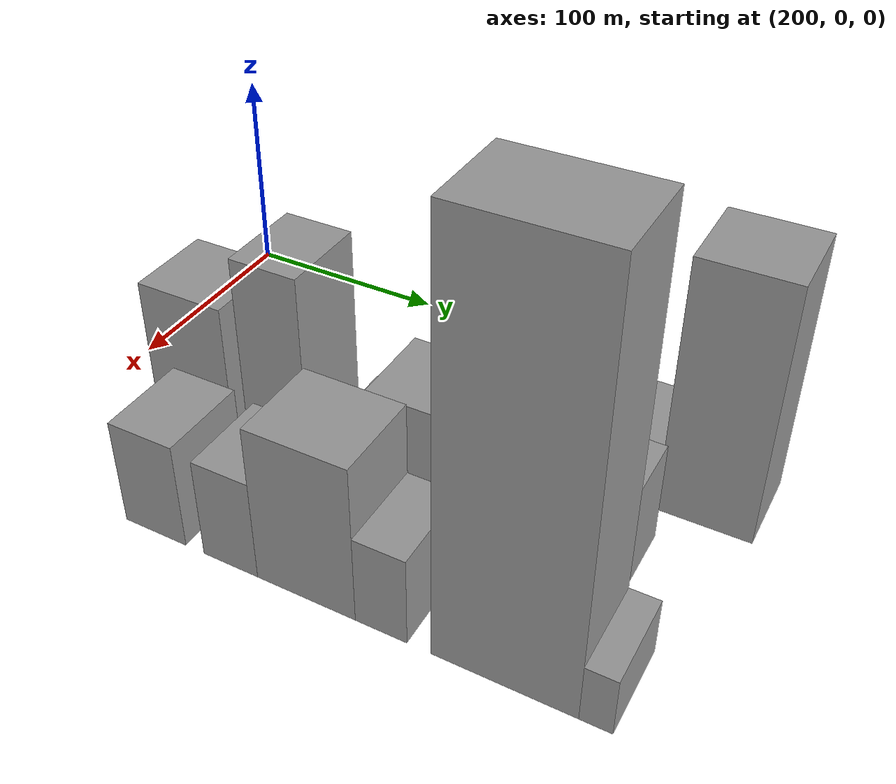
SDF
<sdf version="1.6">
 <world name="default">
  <model name="building_187">
   <static>1</static>
   <pose>265.0000 180.4362 0 0.000000 0.000000 0.000000</pose>
   <link name="link">
    <pose>0 0 22.50 0 0 0</pose>
    <collision name="collision"><geometry><box><size>40.0000 24.5585 45.0000</size></box></geometry></collision>
    <visual name="visual">
     <cast_shadows>0</cast_shadows>
     <geometry><box><size>40.0000 24.5585 45.0000</size></box></geometry>
     <material>
      <script>
       <uri>model://grey_wall/materials/scripts</uri>
       <uri>model://grey_wall/materials/textures</uri>
       <name>vrc/grey_wall</name>
      </script>
     </material>
    </visual>
   </link>
  </model>
  <model name="building_188">
   <static>1</static>
   <pose>265.0000 195.9255 0 0.000000 0.000000 0.000000</pose>
   <link name="link">
    <pose>0 0 7.50 0 0 0</pose>
    <collision name="collision"><geometry><box><size>40.0000 6.4203 15.0000</size></box></geometry></collision>
    <visual name="visual">
     <cast_shadows>0</cast_shadows>
     <geometry><box><size>40.0000 6.4203 15.0000</size></box></geometry>
     <material>
      <script>
       <uri>model://grey_wall/materials/scripts</uri>
       <uri>model://grey_wall/materials/textures</uri>
       <name>vrc/grey_wall</name>
      </script>
     </material>
    </visual>
   </link>
  </model>
  <model name="building_189">
   <static>1</static>
   <pose>265.0000 207.6472 0 0.000000 0.000000 0.000000</pose>
   <link name="link">
    <pose>0 0 15.00 0 0 0</pose>
    <collision name="collision"><geometry><box><size>40.0000 17.0230 30.0000</size></box></geometry></collision>
    <visual name="visual">
     <cast_shadows>0</cast_shadows>
     <geometry><box><size>40.0000 17.0230 30.0000</size></box></geometry>
     <material>
      <script>
       <uri>model://grey_wall/materials/scripts</uri>
       <uri>model://grey_wall/materials/textures</uri>
       <name>vrc/grey_wall</name>
      </script>
     </material>
    </visual>
   </link>
  </model>
  <model name="building_190">
   <static>1</static>
   <pose>265.0000 226.0197 0 0.000000 0.000000 0.000000</pose>
   <link name="link">
    <pose>0 0 19.50 0 0 0</pose>
    <collision name="collision"><geometry><box><size>40.0000 19.7222 39.0000</size></box></geometry></collision>
    <visual name="visual">
     <cast_shadows>0</cast_shadows>
     <geometry><box><size>40.0000 19.7222 39.0000</size></box></geometry>
     <material>
      <script>
       <uri>model://grey_wall/materials/scripts</uri>
       <uri>model://grey_wall/materials/textures</uri>
       <name>vrc/grey_wall</name>
      </script>
     </material>
    </visual>
   </link>
  </model>
  <model name="building_191">
   <static>1</static>
   <pose>265.0000 245.1138 0 0.000000 0.000000 0.000000</pose>
   <link name="link">
    <pose>0 0 16.50 0 0 0</pose>
    <collision name="collision"><geometry><box><size>40.0000 18.4660 33.0000</size></box></geometry></collision>
    <visual name="visual">
     <cast_shadows>0</cast_shadows>
     <geometry><box><size>40.0000 18.4660 33.0000</size></box></geometry>
     <material>
      <script>
       <uri>model://grey_wall/materials/scripts</uri>
       <uri>model://grey_wall/materials/textures</uri>
       <name>vrc/grey_wall</name>
      </script>
     </material>
    </visual>
   </link>
  </model>
  <model name="building_192">
   <static>1</static>
   <pose>265.0000 274.6397 0 0.000000 0.000000 0.000000</pose>
   <link name="link">
    <pose>0 0 61.50 0 0 0</pose>
    <collision name="collision"><geometry><box><size>40.0000 40.5857 123.0000</size></box></geometry></collision>
    <visual name="visual">
     <cast_shadows>0</cast_shadows>
     <geometry><box><size>40.0000 40.5857 123.0000</size></box></geometry>
     <material>
      <script>
       <uri>model://grey_wall/materials/scripts</uri>
       <uri>model://grey_wall/materials/textures</uri>
       <name>vrc/grey_wall</name>
      </script>
     </material>
    </visual>
   </link>
  </model>
  <model name="building_238">
   <static>1</static>
   <pose>320.0000 60.9755 0 0.000000 0.000000 0.000000</pose>
   <link name="link">
    <pose>0 0 37.50 0 0 0</pose>
    <collision name="collision"><geometry><box><size>40.0000 41.4102 75.0000</size></box></geometry></collision>
    <visual name="visual">
     <cast_shadows>0</cast_shadows>
     <geometry><box><size>40.0000 41.4102 75.0000</size></box></geometry>
     <material>
      <script>
       <uri>model://grey_wall/materials/scripts</uri>
       <uri>model://grey_wall/materials/textures</uri>
       <name>vrc/grey_wall</name>
      </script>
     </material>
    </visual>
   </link>
  </model>
  <model name="building_239">
   <static>1</static>
   <pose>320.0000 105.0805 0 0.000000 0.000000 0.000000</pose>
   <link name="link">
    <pose>0 0 51.00 0 0 0</pose>
    <collision name="collision"><geometry><box><size>40.0000 30.7997 102.0000</size></box></geometry></collision>
    <visual name="visual">
     <cast_shadows>0</cast_shadows>
     <geometry><box><size>40.0000 30.7997 102.0000</size></box></geometry>
     <material>
      <script>
       <uri>model://grey_wall/materials/scripts</uri>
       <uri>model://grey_wall/materials/textures</uri>
       <name>vrc/grey_wall</name>
      </script>
     </material>
    </visual>
   </link>
  </model>
  <model name="building_240">
   <static>1</static>
   <pose>320.0000 139.9215 0 0.000000 0.000000 0.000000</pose>
   <link name="link">
    <pose>0 0 16.50 0 0 0</pose>
    <collision name="collision"><geometry><box><size>40.0000 18.8823 33.0000</size></box></geometry></collision>
    <visual name="visual">
     <cast_shadows>0</cast_shadows>
     <geometry><box><size>40.0000 18.8823 33.0000</size></box></geometry>
     <material>
      <script>
       <uri>model://grey_wall/materials/scripts</uri>
       <uri>model://grey_wall/materials/textures</uri>
       <name>vrc/grey_wall</name>
      </script>
     </material>
    </visual>
   </link>
  </model>
  <model name="building_241">
   <static>1</static>
   <pose>320.0000 166.7171 0 0.000000 0.000000 0.000000</pose>
   <link name="link">
    <pose>0 0 30.00 0 0 0</pose>
    <collision name="collision"><geometry><box><size>40.0000 34.7089 60.0000</size></box></geometry></collision>
    <visual name="visual">
     <cast_shadows>0</cast_shadows>
     <geometry><box><size>40.0000 34.7089 60.0000</size></box></geometry>
     <material>
      <script>
       <uri>model://grey_wall/materials/scripts</uri>
       <uri>model://grey_wall/materials/textures</uri>
       <name>vrc/grey_wall</name>
      </script>
     </material>
    </visual>
   </link>
  </model>
  <model name="building_242">
   <static>1</static>
   <pose>320.0000 205.1344 0 0.000000 0.000000 0.000000</pose>
   <link name="link">
    <pose>0 0 22.50 0 0 0</pose>
    <collision name="collision"><geometry><box><size>40.0000 26.1258 45.0000</size></box></geometry></collision>
    <visual name="visual">
     <cast_shadows>0</cast_shadows>
     <geometry><box><size>40.0000 26.1258 45.0000</size></box></geometry>
     <material>
      <script>
       <uri>model://grey_wall/materials/scripts</uri>
       <uri>model://grey_wall/materials/textures</uri>
       <name>vrc/grey_wall</name>
      </script>
     </material>
    </visual>
   </link>
  </model>
  <model name="building_243">
   <static>1</static>
   <pose>320.0000 221.9305 0 0.000000 0.000000 0.000000</pose>
   <link name="link">
    <pose>0 0 9.00 0 0 0</pose>
    <collision name="collision"><geometry><box><size>40.0000 7.4665 18.0000</size></box></geometry></collision>
    <visual name="visual">
     <cast_shadows>0</cast_shadows>
     <geometry><box><size>40.0000 7.4665 18.0000</size></box></geometry>
     <material>
      <script>
       <uri>model://grey_wall/materials/scripts</uri>
       <uri>model://grey_wall/materials/textures</uri>
       <name>vrc/grey_wall</name>
      </script>
     </material>
    </visual>
   </link>
  </model>
  <model name="building_244">
   <static>1</static>
   <pose>320.0000 228.8379 0 0.000000 0.000000 0.000000</pose>
   <link name="link">
    <pose>0 0 7.50 0 0 0</pose>
    <collision name="collision"><geometry><box><size>40.0000 6.3482 15.0000</size></box></geometry></collision>
    <visual name="visual">
     <cast_shadows>0</cast_shadows>
     <geometry><box><size>40.0000 6.3482 15.0000</size></box></geometry>
     <material>
      <script>
       <uri>model://grey_wall/materials/scripts</uri>
       <uri>model://grey_wall/materials/textures</uri>
       <name>vrc/grey_wall</name>
      </script>
     </material>
    </visual>
   </link>
  </model>
  <model name="building_245">
   <static>1</static>
   <pose>320.0000 245.7446 0 0.000000 0.000000 0.000000</pose>
   <link name="link">
    <pose>0 0 24.00 0 0 0</pose>
    <collision name="collision"><geometry><box><size>40.0000 27.4651 48.0000</size></box></geometry></collision>
    <visual name="visual">
     <cast_shadows>0</cast_shadows>
     <geometry><box><size>40.0000 27.4651 48.0000</size></box></geometry>
     <material>
      <script>
       <uri>model://grey_wall/materials/scripts</uri>
       <uri>model://grey_wall/materials/textures</uri>
       <name>vrc/grey_wall</name>
      </script>
     </material>
    </visual>
   </link>
  </model>
  <model name="building_291">
   <static>1</static>
   <pose>375.0000 82.5369 0 0.000000 0.000000 0.000000</pose>
   <link name="link">
    <pose>0 0 25.50 0 0 0</pose>
    <collision name="collision"><geometry><box><size>40.0000 30.3793 51.0000</size></box></geometry></collision>
    <visual name="visual">
     <cast_shadows>0</cast_shadows>
     <geometry><box><size>40.0000 30.3793 51.0000</size></box></geometry>
     <material>
      <script>
       <uri>model://grey_wall/materials/scripts</uri>
       <uri>model://grey_wall/materials/textures</uri>
       <name>vrc/grey_wall</name>
      </script>
     </material>
    </visual>
   </link>
  </model>
  <model name="building_292">
   <static>1</static>
   <pose>375.0000 119.6547 0 0.000000 0.000000 0.000000</pose>
   <link name="link">
    <pose>0 0 24.00 0 0 0</pose>
    <collision name="collision"><geometry><box><size>40.0000 25.8562 48.0000</size></box></geometry></collision>
    <visual name="visual">
     <cast_shadows>0</cast_shadows>
     <geometry><box><size>40.0000 25.8562 48.0000</size></box></geometry>
     <material>
      <script>
       <uri>model://grey_wall/materials/scripts</uri>
       <uri>model://grey_wall/materials/textures</uri>
       <name>vrc/grey_wall</name>
      </script>
     </material>
    </visual>
   </link>
  </model>
  <model name="building_293">
   <static>1</static>
   <pose>375.0000 154.8065 0 0.000000 0.000000 0.000000</pose>
   <link name="link">
    <pose>0 0 37.50 0 0 0</pose>
    <collision name="collision"><geometry><box><size>40.0000 44.4474 75.0000</size></box></geometry></collision>
    <visual name="visual">
     <cast_shadows>0</cast_shadows>
     <geometry><box><size>40.0000 44.4474 75.0000</size></box></geometry>
     <material>
      <script>
       <uri>model://grey_wall/materials/scripts</uri>
       <uri>model://grey_wall/materials/textures</uri>
       <name>vrc/grey_wall</name>
      </script>
     </material>
    </visual>
   </link>
  </model>
  <model name="building_294">
   <static>1</static>
   <pose>375.0000 188.1284 0 0.000000 0.000000 0.000000</pose>
   <link name="link">
    <pose>0 0 21.00 0 0 0</pose>
    <collision name="collision"><geometry><box><size>40.0000 22.1966 42.0000</size></box></geometry></collision>
    <visual name="visual">
     <cast_shadows>0</cast_shadows>
     <geometry><box><size>40.0000 22.1966 42.0000</size></box></geometry>
     <material>
      <script>
       <uri>model://grey_wall/materials/scripts</uri>
       <uri>model://grey_wall/materials/textures</uri>
       <name>vrc/grey_wall</name>
      </script>
     </material>
    </visual>
   </link>
  </model>
  <model name="building_295">
   <static>1</static>
   <pose>375.0000 238.1922 0 0.000000 0.000000 0.000000</pose>
   <link name="link">
    <pose>0 0 94.50 0 0 0</pose>
    <collision name="collision"><geometry><box><size>40.0000 57.9309 189.0000</size></box></geometry></collision>
    <visual name="visual">
     <cast_shadows>0</cast_shadows>
     <geometry><box><size>40.0000 57.9309 189.0000</size></box></geometry>
     <material>
      <script>
       <uri>model://grey_wall/materials/scripts</uri>
       <uri>model://grey_wall/materials/textures</uri>
       <name>vrc/grey_wall</name>
      </script>
     </material>
    </visual>
   </link>
  </model>
  <model name="building_296">
   <static>1</static>
   <pose>375.0000 273.4691 0 0.000000 0.000000 0.000000</pose>
   <link name="link">
    <pose>0 0 13.50 0 0 0</pose>
    <collision name="collision"><geometry><box><size>40.0000 12.6228 27.0000</size></box></geometry></collision>
    <visual name="visual">
     <cast_shadows>0</cast_shadows>
     <geometry><box><size>40.0000 12.6228 27.0000</size></box></geometry>
     <material>
      <script>
       <uri>model://grey_wall/materials/scripts</uri>
       <uri>model://grey_wall/materials/textures</uri>
       <name>vrc/grey_wall</name>
      </script>
     </material>
    </visual>
   </link>
  </model>
 </world>
</sdf>
